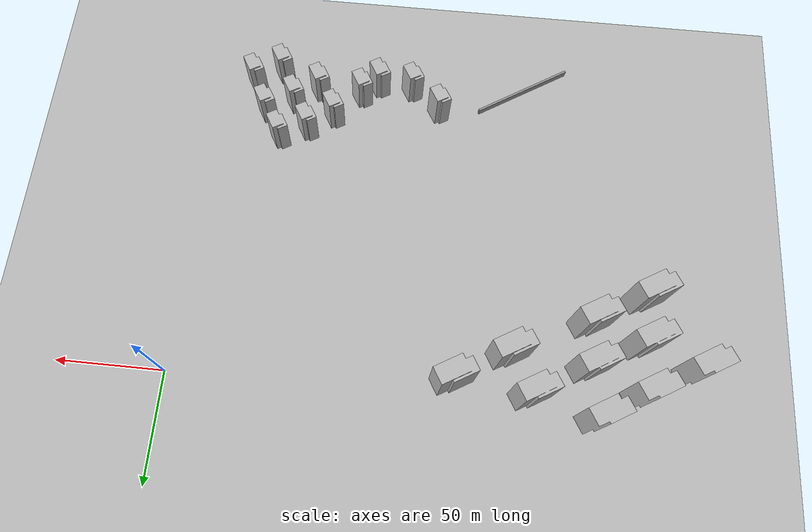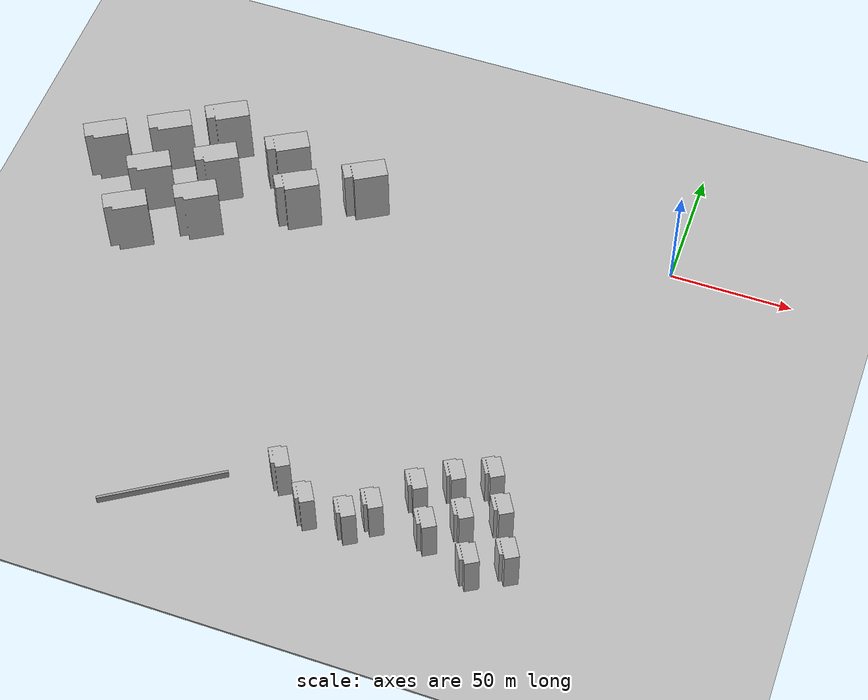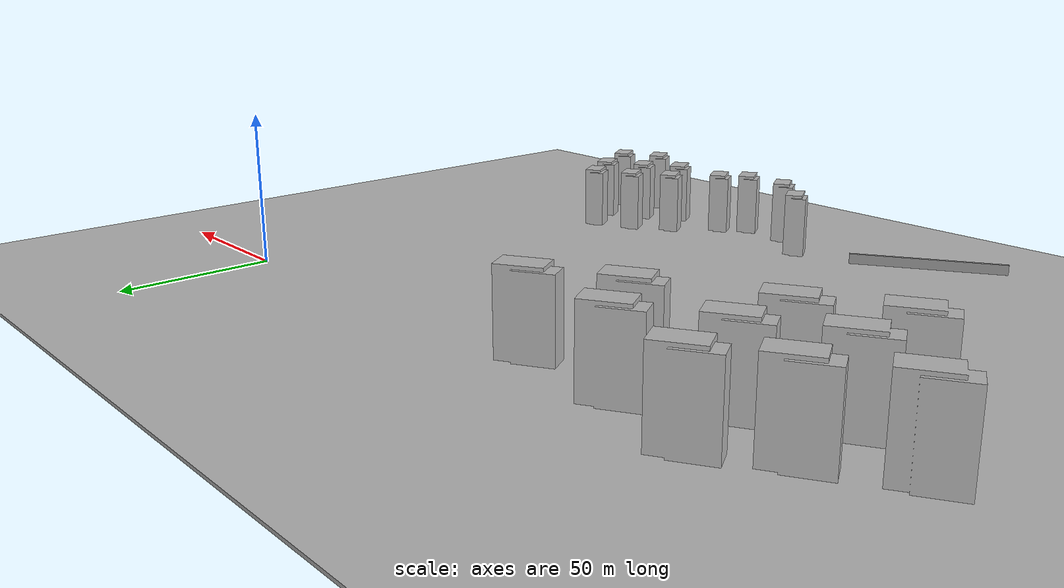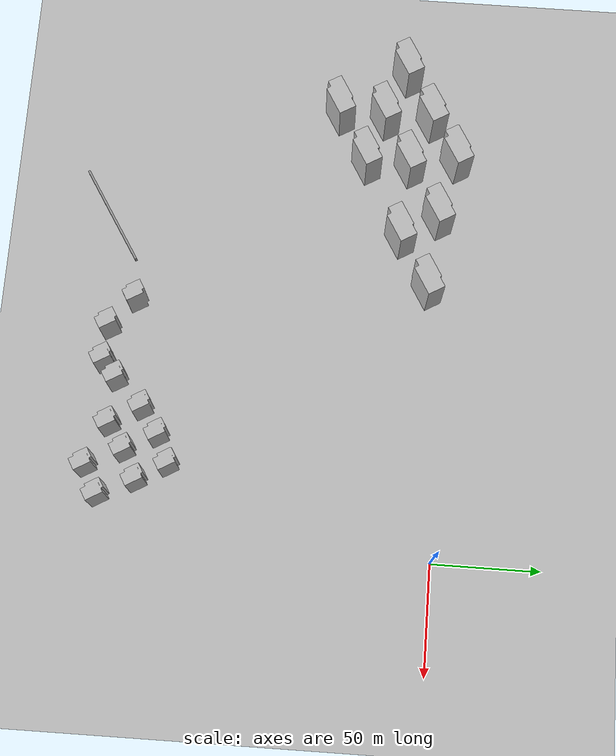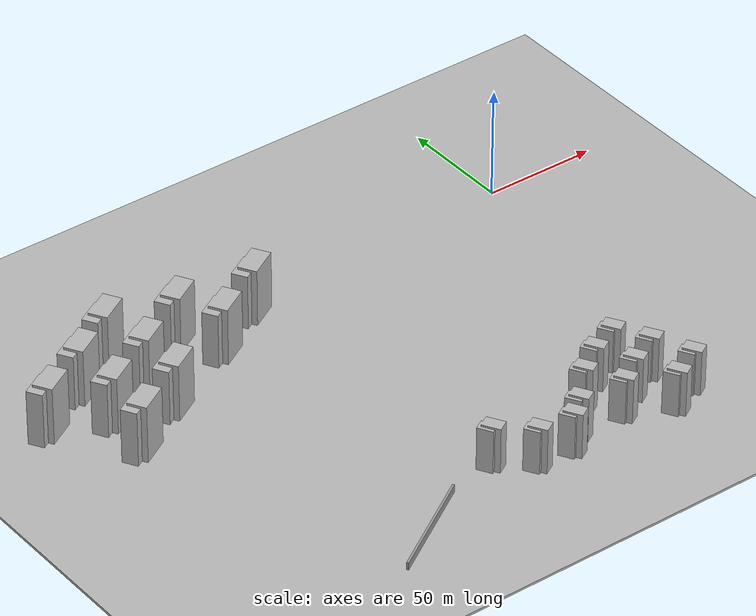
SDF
<sdf version="1.7">
 <world name="default">
  <model name="ground_plane">
   <static>1</static>
   <link name="link">
    <collision name="collision">
     <geometry><mesh><uri>model://ground_plane/scripts/plane.dae</uri><normal>0 0 1</normal></mesh></geometry>
     <surface><friction><ode><mu>100</mu><mu2>50</mu2></ode></friction></surface>
    </collision>
    <visual name="visual">
     <geometry><mesh><uri>model://ground_plane/scripts/plane.dae</uri><normal>0 0 1</normal></mesh></geometry>
     <material>
      <lighting>1</lighting>
      <script><uri>model://ground_plane/scripts/plane.jpg</uri><name>__default__</name></script>
      <shader type="pixel"/>
     </material>
    </visual>
   </link>
  </model>
  <model name="apartment2_1_clone_9">
   <static>1</static>
   <link name="link_0">
    <inertial>
     <mass>1</mass>
     <inertia>
      <ixx>0.166667</ixx>
      <ixy>0</ixy>
      <ixz>0</ixz>
      <iyy>0.166667</iyy>
      <iyz>0</iyz>
      <izz>0.166667</izz>
     </inertia>
    </inertial>
    <pose>1e-06 -0 0 0 -0 0</pose>
    <visual name="visual">
     <geometry>
      <mesh><uri>model://apartment1/scripts/apartment1.dae</uri><scale>0.35 0.14 0.22</scale></mesh>
     </geometry>
     <material>
      <lighting>1</lighting>
      <script><uri>model://apartment1/scripts/apartment1.jpg</uri><name>__default__</name></script>
      <shader type="pixel"/>
     </material>
    </visual>
    <collision name="collision">
     <geometry>
      <mesh><uri>model://apartment1/scripts/apartment1.dae</uri><scale>0.35 0.14 0.22</scale></mesh>
     </geometry>
     <surface>
      <friction>
       <ode><mu>1</mu><mu2>1</mu2><fdir1>0 0 0</fdir1><slip1>0</slip1><slip2>0</slip2></ode>
       <torsional>
        <coefficient>1</coefficient>
        <patch_radius>0</patch_radius>
        <surface_radius>0</surface_radius>
        <use_patch_radius>1</use_patch_radius>
        <ode><slip>0</slip></ode>
       </torsional>
      </friction>
      <bounce><restitution_coefficient>0</restitution_coefficient><threshold>1e+06</threshold></bounce>
      <contact>
       <collide_without_contact>0</collide_without_contact>
       <collide_without_contact_bitmask>1</collide_without_contact_bitmask>
       <collide_bitmask>1</collide_bitmask>
       <ode>
        <soft_cfm>0</soft_cfm>
        <soft_erp>0.2</soft_erp>
        <kp>1e+13</kp>
        <kd>1</kd>
        <max_vel>0.01</max_vel>
        <min_depth>0</min_depth>
       </ode>
       <bullet>
        <split_impulse>1</split_impulse>
        <split_impulse_penetration_threshold>-0.01</split_impulse_penetration_threshold>
        <soft_cfm>0</soft_cfm>
        <soft_erp>0.2</soft_erp>
        <kp>1e+13</kp>
        <kd>1</kd>
       </bullet>
      </contact>
     </surface>
    </collision>
   </link>
   <static>0</static>
   <pose>-211.743 -53.722 0 0 -0 0.527898</pose>
  </model>
  <model name="apartment2_1_clone_10">
   <static>1</static>
   <link name="link_0">
    <inertial>
     <mass>1</mass>
     <inertia>
      <ixx>0.166667</ixx>
      <ixy>0</ixy>
      <ixz>0</ixz>
      <iyy>0.166667</iyy>
      <iyz>0</iyz>
      <izz>0.166667</izz>
     </inertia>
    </inertial>
    <pose>1e-06 -0 0 0 -0 0</pose>
    <visual name="visual">
     <geometry>
      <mesh><uri>model://apartment1/scripts/apartment1.dae</uri><scale>0.35 0.14 0.22</scale></mesh>
     </geometry>
     <material>
      <lighting>1</lighting>
      <script><uri>model://apartment1/scripts/apartment1.jpg</uri><name>__default__</name></script>
      <shader type="pixel"/>
     </material>
    </visual>
    <collision name="collision">
     <geometry>
      <mesh><uri>model://apartment1/scripts/apartment1.dae</uri><scale>0.35 0.14 0.22</scale></mesh>
     </geometry>
     <surface>
      <friction>
       <ode><mu>1</mu><mu2>1</mu2><fdir1>0 0 0</fdir1><slip1>0</slip1><slip2>0</slip2></ode>
       <torsional>
        <coefficient>1</coefficient>
        <patch_radius>0</patch_radius>
        <surface_radius>0</surface_radius>
        <use_patch_radius>1</use_patch_radius>
        <ode><slip>0</slip></ode>
       </torsional>
      </friction>
      <bounce><restitution_coefficient>0</restitution_coefficient><threshold>1e+06</threshold></bounce>
      <contact>
       <collide_without_contact>0</collide_without_contact>
       <collide_without_contact_bitmask>1</collide_without_contact_bitmask>
       <collide_bitmask>1</collide_bitmask>
       <ode>
        <soft_cfm>0</soft_cfm>
        <soft_erp>0.2</soft_erp>
        <kp>1e+13</kp>
        <kd>1</kd>
        <max_vel>0.01</max_vel>
        <min_depth>0</min_depth>
       </ode>
       <bullet>
        <split_impulse>1</split_impulse>
        <split_impulse_penetration_threshold>-0.01</split_impulse_penetration_threshold>
        <soft_cfm>0</soft_cfm>
        <soft_erp>0.2</soft_erp>
        <kp>1e+13</kp>
        <kd>1</kd>
       </bullet>
      </contact>
     </surface>
    </collision>
   </link>
   <static>0</static>
   <pose>-186.969 -39.8378 0 0 -0 0.527898</pose>
  </model>
  <model name="apartment2_1_clone_13">
   <static>1</static>
   <link name="link_0">
    <inertial>
     <mass>1</mass>
     <inertia>
      <ixx>0.166667</ixx>
      <ixy>0</ixy>
      <ixz>0</ixz>
      <iyy>0.166667</iyy>
      <iyz>0</iyz>
      <izz>0.166667</izz>
     </inertia>
    </inertial>
    <pose>1e-06 -0 0 0 -0 0</pose>
    <visual name="visual">
     <geometry>
      <mesh><uri>model://apartment1/scripts/apartment1.dae</uri><scale>0.35 0.14 0.22</scale></mesh>
     </geometry>
     <material>
      <lighting>1</lighting>
      <script><uri>model://apartment1/scripts/apartment1.jpg</uri><name>__default__</name></script>
      <shader type="pixel"/>
     </material>
    </visual>
    <collision name="collision">
     <geometry>
      <mesh><uri>model://apartment1/scripts/apartment1.dae</uri><scale>0.35 0.14 0.22</scale></mesh>
     </geometry>
     <surface>
      <friction>
       <ode><mu>1</mu><mu2>1</mu2><fdir1>0 0 0</fdir1><slip1>0</slip1><slip2>0</slip2></ode>
       <torsional>
        <coefficient>1</coefficient>
        <patch_radius>0</patch_radius>
        <surface_radius>0</surface_radius>
        <use_patch_radius>1</use_patch_radius>
        <ode><slip>0</slip></ode>
       </torsional>
      </friction>
      <bounce><restitution_coefficient>0</restitution_coefficient><threshold>1e+06</threshold></bounce>
      <contact>
       <collide_without_contact>0</collide_without_contact>
       <collide_without_contact_bitmask>1</collide_without_contact_bitmask>
       <collide_bitmask>1</collide_bitmask>
       <ode>
        <soft_cfm>0</soft_cfm>
        <soft_erp>0.2</soft_erp>
        <kp>1e+13</kp>
        <kd>1</kd>
        <max_vel>0.01</max_vel>
        <min_depth>0</min_depth>
       </ode>
       <bullet>
        <split_impulse>1</split_impulse>
        <split_impulse_penetration_threshold>-0.01</split_impulse_penetration_threshold>
        <soft_cfm>0</soft_cfm>
        <soft_erp>0.2</soft_erp>
        <kp>1e+13</kp>
        <kd>1</kd>
       </bullet>
      </contact>
     </surface>
    </collision>
   </link>
   <static>0</static>
   <pose>-210.581 -32.2021 0 0 -0 0.527898</pose>
  </model>
  <model name="apartment2_1_clone_14">
   <static>1</static>
   <link name="link_0">
    <inertial>
     <mass>1</mass>
     <inertia>
      <ixx>0.166667</ixx>
      <ixy>0</ixy>
      <ixz>0</ixz>
      <iyy>0.166667</iyy>
      <iyz>0</iyz>
      <izz>0.166667</izz>
     </inertia>
    </inertial>
    <pose>1e-06 -0 0 0 -0 0</pose>
    <visual name="visual">
     <geometry>
      <mesh><uri>model://apartment1/scripts/apartment1.dae</uri><scale>0.35 0.14 0.22</scale></mesh>
     </geometry>
     <material>
      <lighting>1</lighting>
      <script><uri>model://apartment1/scripts/apartment1.jpg</uri><name>__default__</name></script>
      <shader type="pixel"/>
     </material>
    </visual>
    <collision name="collision">
     <geometry>
      <mesh><uri>model://apartment1/scripts/apartment1.dae</uri><scale>0.35 0.14 0.22</scale></mesh>
     </geometry>
     <surface>
      <friction>
       <ode><mu>1</mu><mu2>1</mu2><fdir1>0 0 0</fdir1><slip1>0</slip1><slip2>0</slip2></ode>
       <torsional>
        <coefficient>1</coefficient>
        <patch_radius>0</patch_radius>
        <surface_radius>0</surface_radius>
        <use_patch_radius>1</use_patch_radius>
        <ode><slip>0</slip></ode>
       </torsional>
      </friction>
      <bounce><restitution_coefficient>0</restitution_coefficient><threshold>1e+06</threshold></bounce>
      <contact>
       <collide_without_contact>0</collide_without_contact>
       <collide_without_contact_bitmask>1</collide_without_contact_bitmask>
       <collide_bitmask>1</collide_bitmask>
       <ode>
        <soft_cfm>0</soft_cfm>
        <soft_erp>0.2</soft_erp>
        <kp>1e+13</kp>
        <kd>1</kd>
        <max_vel>0.01</max_vel>
        <min_depth>0</min_depth>
       </ode>
       <bullet>
        <split_impulse>1</split_impulse>
        <split_impulse_penetration_threshold>-0.01</split_impulse_penetration_threshold>
        <soft_cfm>0</soft_cfm>
        <soft_erp>0.2</soft_erp>
        <kp>1e+13</kp>
        <kd>1</kd>
       </bullet>
      </contact>
     </surface>
    </collision>
   </link>
   <static>0</static>
   <pose>-186.561 -19.3245 0 0 -0 0.527898</pose>
  </model>
  <model name="apartment2_1_clone_16">
   <static>1</static>
   <link name="link_0">
    <inertial>
     <mass>1</mass>
     <inertia>
      <ixx>0.166667</ixx>
      <ixy>0</ixy>
      <ixz>0</ixz>
      <iyy>0.166667</iyy>
      <iyz>0</iyz>
      <izz>0.166667</izz>
     </inertia>
    </inertial>
    <pose>1e-06 -0 0 0 -0 0</pose>
    <visual name="visual">
     <geometry>
      <mesh><uri>model://apartment1/scripts/apartment1.dae</uri><scale>0.35 0.14 0.22</scale></mesh>
     </geometry>
     <material>
      <lighting>1</lighting>
      <script><uri>model://apartment1/scripts/apartment1.jpg</uri><name>__default__</name></script>
      <shader type="pixel"/>
     </material>
    </visual>
    <collision name="collision">
     <geometry>
      <mesh><uri>model://apartment1/scripts/apartment1.dae</uri><scale>0.35 0.14 0.22</scale></mesh>
     </geometry>
     <surface>
      <friction>
       <ode><mu>1</mu><mu2>1</mu2><fdir1>0 0 0</fdir1><slip1>0</slip1><slip2>0</slip2></ode>
       <torsional>
        <coefficient>1</coefficient>
        <patch_radius>0</patch_radius>
        <surface_radius>0</surface_radius>
        <use_patch_radius>1</use_patch_radius>
        <ode><slip>0</slip></ode>
       </torsional>
      </friction>
      <bounce><restitution_coefficient>0</restitution_coefficient><threshold>1e+06</threshold></bounce>
      <contact>
       <collide_without_contact>0</collide_without_contact>
       <collide_without_contact_bitmask>1</collide_without_contact_bitmask>
       <collide_bitmask>1</collide_bitmask>
       <ode>
        <soft_cfm>0</soft_cfm>
        <soft_erp>0.2</soft_erp>
        <kp>1e+13</kp>
        <kd>1</kd>
        <max_vel>0.01</max_vel>
        <min_depth>0</min_depth>
       </ode>
       <bullet>
        <split_impulse>1</split_impulse>
        <split_impulse_penetration_threshold>-0.01</split_impulse_penetration_threshold>
        <soft_cfm>0</soft_cfm>
        <soft_erp>0.2</soft_erp>
        <kp>1e+13</kp>
        <kd>1</kd>
       </bullet>
      </contact>
     </surface>
    </collision>
   </link>
   <static>0</static>
   <pose>-233.929 -22.5574 0 0 -0 0.527898</pose>
  </model>
  <model name="apartment2_1_clone_17">
   <static>1</static>
   <link name="link_0">
    <inertial>
     <mass>1</mass>
     <inertia>
      <ixx>0.166667</ixx>
      <ixy>0</ixy>
      <ixz>0</ixz>
      <iyy>0.166667</iyy>
      <iyz>0</iyz>
      <izz>0.166667</izz>
     </inertia>
    </inertial>
    <pose>1e-06 -0 0 0 -0 0</pose>
    <visual name="visual">
     <geometry>
      <mesh><uri>model://apartment1/scripts/apartment1.dae</uri><scale>0.35 0.14 0.22</scale></mesh>
     </geometry>
     <material>
      <lighting>1</lighting>
      <script><uri>model://apartment1/scripts/apartment1.jpg</uri><name>__default__</name></script>
      <shader type="pixel"/>
     </material>
    </visual>
    <collision name="collision">
     <geometry>
      <mesh><uri>model://apartment1/scripts/apartment1.dae</uri><scale>0.35 0.14 0.22</scale></mesh>
     </geometry>
     <surface>
      <friction>
       <ode><mu>1</mu><mu2>1</mu2><fdir1>0 0 0</fdir1><slip1>0</slip1><slip2>0</slip2></ode>
       <torsional>
        <coefficient>1</coefficient>
        <patch_radius>0</patch_radius>
        <surface_radius>0</surface_radius>
        <use_patch_radius>1</use_patch_radius>
        <ode><slip>0</slip></ode>
       </torsional>
      </friction>
      <bounce><restitution_coefficient>0</restitution_coefficient><threshold>1e+06</threshold></bounce>
      <contact>
       <collide_without_contact>0</collide_without_contact>
       <collide_without_contact_bitmask>1</collide_without_contact_bitmask>
       <collide_bitmask>1</collide_bitmask>
       <ode>
        <soft_cfm>0</soft_cfm>
        <soft_erp>0.2</soft_erp>
        <kp>1e+13</kp>
        <kd>1</kd>
        <max_vel>0.01</max_vel>
        <min_depth>0</min_depth>
       </ode>
       <bullet>
        <split_impulse>1</split_impulse>
        <split_impulse_penetration_threshold>-0.01</split_impulse_penetration_threshold>
        <soft_cfm>0</soft_cfm>
        <soft_erp>0.2</soft_erp>
        <kp>1e+13</kp>
        <kd>1</kd>
       </bullet>
      </contact>
     </surface>
    </collision>
   </link>
   <static>0</static>
   <pose>-210.879 -9.94303 0 0 -0 0.527898</pose>
  </model>
  <model name="apartment2_1_clone_18">
   <static>1</static>
   <link name="link_0">
    <inertial>
     <mass>1</mass>
     <inertia>
      <ixx>0.166667</ixx>
      <ixy>0</ixy>
      <ixz>0</ixz>
      <iyy>0.166667</iyy>
      <iyz>0</iyz>
      <izz>0.166667</izz>
     </inertia>
    </inertial>
    <pose>1e-06 -0 0 0 -0 0</pose>
    <visual name="visual">
     <geometry>
      <mesh><uri>model://apartment1/scripts/apartment1.dae</uri><scale>0.35 0.14 0.22</scale></mesh>
     </geometry>
     <material>
      <lighting>1</lighting>
      <script><uri>model://apartment1/scripts/apartment1.jpg</uri><name>__default__</name></script>
      <shader type="pixel"/>
     </material>
    </visual>
    <collision name="collision">
     <geometry>
      <mesh><uri>model://apartment1/scripts/apartment1.dae</uri><scale>0.35 0.14 0.22</scale></mesh>
     </geometry>
     <surface>
      <friction>
       <ode><mu>1</mu><mu2>1</mu2><fdir1>0 0 0</fdir1><slip1>0</slip1><slip2>0</slip2></ode>
       <torsional>
        <coefficient>1</coefficient>
        <patch_radius>0</patch_radius>
        <surface_radius>0</surface_radius>
        <use_patch_radius>1</use_patch_radius>
        <ode><slip>0</slip></ode>
       </torsional>
      </friction>
      <bounce><restitution_coefficient>0</restitution_coefficient><threshold>1e+06</threshold></bounce>
      <contact>
       <collide_without_contact>0</collide_without_contact>
       <collide_without_contact_bitmask>1</collide_without_contact_bitmask>
       <collide_bitmask>1</collide_bitmask>
       <ode>
        <soft_cfm>0</soft_cfm>
        <soft_erp>0.2</soft_erp>
        <kp>1e+13</kp>
        <kd>1</kd>
        <max_vel>0.01</max_vel>
        <min_depth>0</min_depth>
       </ode>
       <bullet>
        <split_impulse>1</split_impulse>
        <split_impulse_penetration_threshold>-0.01</split_impulse_penetration_threshold>
        <soft_cfm>0</soft_cfm>
        <soft_erp>0.2</soft_erp>
        <kp>1e+13</kp>
        <kd>1</kd>
       </bullet>
      </contact>
     </surface>
    </collision>
   </link>
   <static>0</static>
   <pose>-190.612 2.60224 0 0 -0 0.527898</pose>
  </model>
  <model name="apartment2_1_clone_19">
   <static>1</static>
   <link name="link_0">
    <inertial>
     <mass>1</mass>
     <inertia>
      <ixx>0.166667</ixx>
      <ixy>0</ixy>
      <ixz>0</ixz>
      <iyy>0.166667</iyy>
      <iyz>0</iyz>
      <izz>0.166667</izz>
     </inertia>
    </inertial>
    <pose>1e-06 -0 0 0 -0 0</pose>
    <visual name="visual">
     <geometry>
      <mesh><uri>model://apartment1/scripts/apartment1.dae</uri><scale>0.35 0.14 0.22</scale></mesh>
     </geometry>
     <material>
      <lighting>1</lighting>
      <script><uri>model://apartment1/scripts/apartment1.jpg</uri><name>__default__</name></script>
      <shader type="pixel"/>
     </material>
    </visual>
    <collision name="collision">
     <geometry>
      <mesh><uri>model://apartment1/scripts/apartment1.dae</uri><scale>0.35 0.14 0.22</scale></mesh>
     </geometry>
     <surface>
      <friction>
       <ode><mu>1</mu><mu2>1</mu2><fdir1>0 0 0</fdir1><slip1>0</slip1><slip2>0</slip2></ode>
       <torsional>
        <coefficient>1</coefficient>
        <patch_radius>0</patch_radius>
        <surface_radius>0</surface_radius>
        <use_patch_radius>1</use_patch_radius>
        <ode><slip>0</slip></ode>
       </torsional>
      </friction>
      <bounce><restitution_coefficient>0</restitution_coefficient><threshold>1e+06</threshold></bounce>
      <contact>
       <collide_without_contact>0</collide_without_contact>
       <collide_without_contact_bitmask>1</collide_without_contact_bitmask>
       <collide_bitmask>1</collide_bitmask>
       <ode>
        <soft_cfm>0</soft_cfm>
        <soft_erp>0.2</soft_erp>
        <kp>1e+13</kp>
        <kd>1</kd>
        <max_vel>0.01</max_vel>
        <min_depth>0</min_depth>
       </ode>
       <bullet>
        <split_impulse>1</split_impulse>
        <split_impulse_penetration_threshold>-0.01</split_impulse_penetration_threshold>
        <soft_cfm>0</soft_cfm>
        <soft_erp>0.2</soft_erp>
        <kp>1e+13</kp>
        <kd>1</kd>
       </bullet>
      </contact>
     </surface>
    </collision>
   </link>
   <static>0</static>
   <pose>-126.254 -7.98526 0 0 -0 0.527898</pose>
  </model>
  <model name="apartment2_1_clone_20">
   <static>1</static>
   <link name="link_0">
    <inertial>
     <mass>1</mass>
     <inertia>
      <ixx>0.166667</ixx>
      <ixy>0</ixy>
      <ixz>0</ixz>
      <iyy>0.166667</iyy>
      <iyz>0</iyz>
      <izz>0.166667</izz>
     </inertia>
    </inertial>
    <pose>1e-06 -0 0 0 -0 0</pose>
    <visual name="visual">
     <geometry>
      <mesh><uri>model://apartment1/scripts/apartment1.dae</uri><scale>0.35 0.14 0.22</scale></mesh>
     </geometry>
     <material>
      <lighting>1</lighting>
      <script><uri>model://apartment1/scripts/apartment1.jpg</uri><name>__default__</name></script>
      <shader type="pixel"/>
     </material>
    </visual>
    <collision name="collision">
     <geometry>
      <mesh><uri>model://apartment1/scripts/apartment1.dae</uri><scale>0.35 0.14 0.22</scale></mesh>
     </geometry>
     <surface>
      <friction>
       <ode><mu>1</mu><mu2>1</mu2><fdir1>0 0 0</fdir1><slip1>0</slip1><slip2>0</slip2></ode>
       <torsional>
        <coefficient>1</coefficient>
        <patch_radius>0</patch_radius>
        <surface_radius>0</surface_radius>
        <use_patch_radius>1</use_patch_radius>
        <ode><slip>0</slip></ode>
       </torsional>
      </friction>
      <bounce><restitution_coefficient>0</restitution_coefficient><threshold>1e+06</threshold></bounce>
      <contact>
       <collide_without_contact>0</collide_without_contact>
       <collide_without_contact_bitmask>1</collide_without_contact_bitmask>
       <collide_bitmask>1</collide_bitmask>
       <ode>
        <soft_cfm>0</soft_cfm>
        <soft_erp>0.2</soft_erp>
        <kp>1e+13</kp>
        <kd>1</kd>
        <max_vel>0.01</max_vel>
        <min_depth>0</min_depth>
       </ode>
       <bullet>
        <split_impulse>1</split_impulse>
        <split_impulse_penetration_threshold>-0.01</split_impulse_penetration_threshold>
        <soft_cfm>0</soft_cfm>
        <soft_erp>0.2</soft_erp>
        <kp>1e+13</kp>
        <kd>1</kd>
       </bullet>
      </contact>
     </surface>
    </collision>
   </link>
   <static>0</static>
   <pose>-150.629 -21.8684 0 0 -0 0.527898</pose>
  </model>
  <model name="apartment2_1_clone_22">
   <static>1</static>
   <link name="link_0">
    <inertial>
     <mass>1</mass>
     <inertia>
      <ixx>0.166667</ixx>
      <ixy>0</ixy>
      <ixz>0</ixz>
      <iyy>0.166667</iyy>
      <iyz>0</iyz>
      <izz>0.166667</izz>
     </inertia>
    </inertial>
    <pose>1e-06 -0 0 0 -0 0</pose>
    <visual name="visual">
     <geometry>
      <mesh><uri>model://apartment1/scripts/apartment1.dae</uri><scale>0.35 0.14 0.22</scale></mesh>
     </geometry>
     <material>
      <lighting>1</lighting>
      <script><uri>model://apartment1/scripts/apartment1.jpg</uri><name>__default__</name></script>
      <shader type="pixel"/>
     </material>
    </visual>
    <collision name="collision">
     <geometry>
      <mesh><uri>model://apartment1/scripts/apartment1.dae</uri><scale>0.35 0.14 0.22</scale></mesh>
     </geometry>
     <surface>
      <friction>
       <ode><mu>1</mu><mu2>1</mu2><fdir1>0 0 0</fdir1><slip1>0</slip1><slip2>0</slip2></ode>
       <torsional>
        <coefficient>1</coefficient>
        <patch_radius>0</patch_radius>
        <surface_radius>0</surface_radius>
        <use_patch_radius>1</use_patch_radius>
        <ode><slip>0</slip></ode>
       </torsional>
      </friction>
      <bounce><restitution_coefficient>0</restitution_coefficient><threshold>1e+06</threshold></bounce>
      <contact>
       <collide_without_contact>0</collide_without_contact>
       <collide_without_contact_bitmask>1</collide_without_contact_bitmask>
       <collide_bitmask>1</collide_bitmask>
       <ode>
        <soft_cfm>0</soft_cfm>
        <soft_erp>0.2</soft_erp>
        <kp>1e+13</kp>
        <kd>1</kd>
        <max_vel>0.01</max_vel>
        <min_depth>0</min_depth>
       </ode>
       <bullet>
        <split_impulse>1</split_impulse>
        <split_impulse_penetration_threshold>-0.01</split_impulse_penetration_threshold>
        <soft_cfm>0</soft_cfm>
        <soft_erp>0.2</soft_erp>
        <kp>1e+13</kp>
        <kd>1</kd>
       </bullet>
      </contact>
     </surface>
    </collision>
   </link>
   <static>0</static>
   <pose>-161.201 -4.68446 0 0 -0 0.527898</pose>
  </model>
  <model name="apartment4_clone_17">
   <static>1</static>
   <link name="link_0">
    <inertial>
     <mass>1</mass>
     <inertia>
      <ixx>0.166667</ixx>
      <ixy>0</ixy>
      <ixz>0</ixz>
      <iyy>0.166667</iyy>
      <iyz>0</iyz>
      <izz>0.166667</izz>
     </inertia>
    </inertial>
    <pose>1e-06 -0 0 0 -0 0</pose>
    <visual name="visual">
     <geometry>
      <mesh><uri>model://apartment4/scripts/apartment1.dae</uri><scale>0.14 0.14 0.175</scale></mesh>
     </geometry>
     <material>
      <lighting>1</lighting>
      <script><uri>model://apartment4/scripts/apartment1.jpg</uri><name>__default__</name></script>
      <shader type="pixel"/>
     </material>
    </visual>
    <collision name="collision">
     <geometry>
      <mesh><uri>model://apartment4/scripts/apartment1.dae</uri><scale>0.14 0.14 0.175</scale></mesh>
     </geometry>
     <surface>
      <friction>
       <ode><mu>1</mu><mu2>1</mu2><fdir1>0 0 0</fdir1><slip1>0</slip1><slip2>0</slip2></ode>
       <torsional>
        <coefficient>1</coefficient>
        <patch_radius>0</patch_radius>
        <surface_radius>0</surface_radius>
        <use_patch_radius>1</use_patch_radius>
        <ode><slip>0</slip></ode>
       </torsional>
      </friction>
      <bounce><restitution_coefficient>0</restitution_coefficient><threshold>1e+06</threshold></bounce>
      <contact>
       <collide_without_contact>0</collide_without_contact>
       <collide_without_contact_bitmask>1</collide_without_contact_bitmask>
       <collide_bitmask>1</collide_bitmask>
       <ode>
        <soft_cfm>0</soft_cfm>
        <soft_erp>0.2</soft_erp>
        <kp>1e+13</kp>
        <kd>1</kd>
        <max_vel>0.01</max_vel>
        <min_depth>0</min_depth>
       </ode>
       <bullet>
        <split_impulse>1</split_impulse>
        <split_impulse_penetration_threshold>-0.01</split_impulse_penetration_threshold>
        <soft_cfm>0</soft_cfm>
        <soft_erp>0.2</soft_erp>
        <kp>1e+13</kp>
        <kd>1</kd>
       </bullet>
      </contact>
     </surface>
    </collision>
   </link>
   <static>0</static>
   <pose>-19.5302 -151.042 0 0 -0 0.524325</pose>
  </model>
  <model name="apartment4_clone_18">
   <static>1</static>
   <link name="link_0">
    <inertial>
     <mass>1</mass>
     <inertia>
      <ixx>0.166667</ixx>
      <ixy>0</ixy>
      <ixz>0</ixz>
      <iyy>0.166667</iyy>
      <iyz>0</iyz>
      <izz>0.166667</izz>
     </inertia>
    </inertial>
    <pose>1e-06 -0 0 0 -0 0</pose>
    <visual name="visual">
     <geometry>
      <mesh><uri>model://apartment4/scripts/apartment1.dae</uri><scale>0.14 0.14 0.175</scale></mesh>
     </geometry>
     <material>
      <lighting>1</lighting>
      <script><uri>model://apartment4/scripts/apartment1.jpg</uri><name>__default__</name></script>
      <shader type="pixel"/>
     </material>
    </visual>
    <collision name="collision">
     <geometry>
      <mesh><uri>model://apartment4/scripts/apartment1.dae</uri><scale>0.14 0.14 0.175</scale></mesh>
     </geometry>
     <surface>
      <friction>
       <ode><mu>1</mu><mu2>1</mu2><fdir1>0 0 0</fdir1><slip1>0</slip1><slip2>0</slip2></ode>
       <torsional>
        <coefficient>1</coefficient>
        <patch_radius>0</patch_radius>
        <surface_radius>0</surface_radius>
        <use_patch_radius>1</use_patch_radius>
        <ode><slip>0</slip></ode>
       </torsional>
      </friction>
      <bounce><restitution_coefficient>0</restitution_coefficient><threshold>1e+06</threshold></bounce>
      <contact>
       <collide_without_contact>0</collide_without_contact>
       <collide_without_contact_bitmask>1</collide_without_contact_bitmask>
       <collide_bitmask>1</collide_bitmask>
       <ode>
        <soft_cfm>0</soft_cfm>
        <soft_erp>0.2</soft_erp>
        <kp>1e+13</kp>
        <kd>1</kd>
        <max_vel>0.01</max_vel>
        <min_depth>0</min_depth>
       </ode>
       <bullet>
        <split_impulse>1</split_impulse>
        <split_impulse_penetration_threshold>-0.01</split_impulse_penetration_threshold>
        <soft_cfm>0</soft_cfm>
        <soft_erp>0.2</soft_erp>
        <kp>1e+13</kp>
        <kd>1</kd>
       </bullet>
      </contact>
     </surface>
    </collision>
   </link>
   <static>0</static>
   <pose>-27.1296 -134.321 0 0 -0 0.524325</pose>
  </model>
  <model name="apartment4_clone_19">
   <static>1</static>
   <link name="link_0">
    <inertial>
     <mass>1</mass>
     <inertia>
      <ixx>0.166667</ixx>
      <ixy>0</ixy>
      <ixz>0</ixz>
      <iyy>0.166667</iyy>
      <iyz>0</iyz>
      <izz>0.166667</izz>
     </inertia>
    </inertial>
    <pose>1e-06 -0 0 0 -0 0</pose>
    <visual name="visual">
     <geometry>
      <mesh><uri>model://apartment4/scripts/apartment1.dae</uri><scale>0.14 0.14 0.175</scale></mesh>
     </geometry>
     <material>
      <lighting>1</lighting>
      <script><uri>model://apartment4/scripts/apartment1.jpg</uri><name>__default__</name></script>
      <shader type="pixel"/>
     </material>
    </visual>
    <collision name="collision">
     <geometry>
      <mesh><uri>model://apartment4/scripts/apartment1.dae</uri><scale>0.14 0.14 0.175</scale></mesh>
     </geometry>
     <surface>
      <friction>
       <ode><mu>1</mu><mu2>1</mu2><fdir1>0 0 0</fdir1><slip1>0</slip1><slip2>0</slip2></ode>
       <torsional>
        <coefficient>1</coefficient>
        <patch_radius>0</patch_radius>
        <surface_radius>0</surface_radius>
        <use_patch_radius>1</use_patch_radius>
        <ode><slip>0</slip></ode>
       </torsional>
      </friction>
      <bounce><restitution_coefficient>0</restitution_coefficient><threshold>1e+06</threshold></bounce>
      <contact>
       <collide_without_contact>0</collide_without_contact>
       <collide_without_contact_bitmask>1</collide_without_contact_bitmask>
       <collide_bitmask>1</collide_bitmask>
       <ode>
        <soft_cfm>0</soft_cfm>
        <soft_erp>0.2</soft_erp>
        <kp>1e+13</kp>
        <kd>1</kd>
        <max_vel>0.01</max_vel>
        <min_depth>0</min_depth>
       </ode>
       <bullet>
        <split_impulse>1</split_impulse>
        <split_impulse_penetration_threshold>-0.01</split_impulse_penetration_threshold>
        <soft_cfm>0</soft_cfm>
        <soft_erp>0.2</soft_erp>
        <kp>1e+13</kp>
        <kd>1</kd>
       </bullet>
      </contact>
     </surface>
    </collision>
   </link>
   <static>0</static>
   <pose>-35.1304 -120.534 0 0 -0 0.524325</pose>
  </model>
  <model name="apartment4_clone_20">
   <static>1</static>
   <link name="link_0">
    <inertial>
     <mass>1</mass>
     <inertia>
      <ixx>0.166667</ixx>
      <ixy>0</ixy>
      <ixz>0</ixz>
      <iyy>0.166667</iyy>
      <iyz>0</iyz>
      <izz>0.166667</izz>
     </inertia>
    </inertial>
    <pose>1e-06 -0 0 0 -0 0</pose>
    <visual name="visual">
     <geometry>
      <mesh><uri>model://apartment4/scripts/apartment1.dae</uri><scale>0.14 0.14 0.175</scale></mesh>
     </geometry>
     <material>
      <lighting>1</lighting>
      <script><uri>model://apartment4/scripts/apartment1.jpg</uri><name>__default__</name></script>
      <shader type="pixel"/>
     </material>
    </visual>
    <collision name="collision">
     <geometry>
      <mesh><uri>model://apartment4/scripts/apartment1.dae</uri><scale>0.14 0.14 0.175</scale></mesh>
     </geometry>
     <surface>
      <friction>
       <ode><mu>1</mu><mu2>1</mu2><fdir1>0 0 0</fdir1><slip1>0</slip1><slip2>0</slip2></ode>
       <torsional>
        <coefficient>1</coefficient>
        <patch_radius>0</patch_radius>
        <surface_radius>0</surface_radius>
        <use_patch_radius>1</use_patch_radius>
        <ode><slip>0</slip></ode>
       </torsional>
      </friction>
      <bounce><restitution_coefficient>0</restitution_coefficient><threshold>1e+06</threshold></bounce>
      <contact>
       <collide_without_contact>0</collide_without_contact>
       <collide_without_contact_bitmask>1</collide_without_contact_bitmask>
       <collide_bitmask>1</collide_bitmask>
       <ode>
        <soft_cfm>0</soft_cfm>
        <soft_erp>0.2</soft_erp>
        <kp>1e+13</kp>
        <kd>1</kd>
        <max_vel>0.01</max_vel>
        <min_depth>0</min_depth>
       </ode>
       <bullet>
        <split_impulse>1</split_impulse>
        <split_impulse_penetration_threshold>-0.01</split_impulse_penetration_threshold>
        <soft_cfm>0</soft_cfm>
        <soft_erp>0.2</soft_erp>
        <kp>1e+13</kp>
        <kd>1</kd>
       </bullet>
      </contact>
     </surface>
    </collision>
   </link>
   <static>0</static>
   <pose>-48.2908 -126.251 0 0 -0 0.524325</pose>
  </model>
  <model name="apartment4_clone_21">
   <static>1</static>
   <link name="link_0">
    <inertial>
     <mass>1</mass>
     <inertia>
      <ixx>0.166667</ixx>
      <ixy>0</ixy>
      <ixz>0</ixz>
      <iyy>0.166667</iyy>
      <iyz>0</iyz>
      <izz>0.166667</izz>
     </inertia>
    </inertial>
    <pose>1e-06 -0 0 0 -0 0</pose>
    <visual name="visual">
     <geometry>
      <mesh><uri>model://apartment4/scripts/apartment1.dae</uri><scale>0.14 0.14 0.175</scale></mesh>
     </geometry>
     <material>
      <lighting>1</lighting>
      <script><uri>model://apartment4/scripts/apartment1.jpg</uri><name>__default__</name></script>
      <shader type="pixel"/>
     </material>
    </visual>
    <collision name="collision">
     <geometry>
      <mesh><uri>model://apartment4/scripts/apartment1.dae</uri><scale>0.14 0.14 0.175</scale></mesh>
     </geometry>
     <surface>
      <friction>
       <ode><mu>1</mu><mu2>1</mu2><fdir1>0 0 0</fdir1><slip1>0</slip1><slip2>0</slip2></ode>
       <torsional>
        <coefficient>1</coefficient>
        <patch_radius>0</patch_radius>
        <surface_radius>0</surface_radius>
        <use_patch_radius>1</use_patch_radius>
        <ode><slip>0</slip></ode>
       </torsional>
      </friction>
      <bounce><restitution_coefficient>0</restitution_coefficient><threshold>1e+06</threshold></bounce>
      <contact>
       <collide_without_contact>0</collide_without_contact>
       <collide_without_contact_bitmask>1</collide_without_contact_bitmask>
       <collide_bitmask>1</collide_bitmask>
       <ode>
        <soft_cfm>0</soft_cfm>
        <soft_erp>0.2</soft_erp>
        <kp>1e+13</kp>
        <kd>1</kd>
        <max_vel>0.01</max_vel>
        <min_depth>0</min_depth>
       </ode>
       <bullet>
        <split_impulse>1</split_impulse>
        <split_impulse_penetration_threshold>-0.01</split_impulse_penetration_threshold>
        <soft_cfm>0</soft_cfm>
        <soft_erp>0.2</soft_erp>
        <kp>1e+13</kp>
        <kd>1</kd>
       </bullet>
      </contact>
     </surface>
    </collision>
   </link>
   <static>0</static>
   <pose>-40.4209 -140.871 0 0 -0 0.524325</pose>
  </model>
  <model name="apartment4_clone_22">
   <static>1</static>
   <link name="link_0">
    <inertial>
     <mass>1</mass>
     <inertia>
      <ixx>0.166667</ixx>
      <ixy>0</ixy>
      <ixz>0</ixz>
      <iyy>0.166667</iyy>
      <iyz>0</iyz>
      <izz>0.166667</izz>
     </inertia>
    </inertial>
    <pose>1e-06 -0 0 0 -0 0</pose>
    <visual name="visual">
     <geometry>
      <mesh><uri>model://apartment4/scripts/apartment1.dae</uri><scale>0.14 0.14 0.175</scale></mesh>
     </geometry>
     <material>
      <lighting>1</lighting>
      <script><uri>model://apartment4/scripts/apartment1.jpg</uri><name>__default__</name></script>
      <shader type="pixel"/>
     </material>
    </visual>
    <collision name="collision">
     <geometry>
      <mesh><uri>model://apartment4/scripts/apartment1.dae</uri><scale>0.14 0.14 0.175</scale></mesh>
     </geometry>
     <surface>
      <friction>
       <ode><mu>1</mu><mu2>1</mu2><fdir1>0 0 0</fdir1><slip1>0</slip1><slip2>0</slip2></ode>
       <torsional>
        <coefficient>1</coefficient>
        <patch_radius>0</patch_radius>
        <surface_radius>0</surface_radius>
        <use_patch_radius>1</use_patch_radius>
        <ode><slip>0</slip></ode>
       </torsional>
      </friction>
      <bounce><restitution_coefficient>0</restitution_coefficient><threshold>1e+06</threshold></bounce>
      <contact>
       <collide_without_contact>0</collide_without_contact>
       <collide_without_contact_bitmask>1</collide_without_contact_bitmask>
       <collide_bitmask>1</collide_bitmask>
       <ode>
        <soft_cfm>0</soft_cfm>
        <soft_erp>0.2</soft_erp>
        <kp>1e+13</kp>
        <kd>1</kd>
        <max_vel>0.01</max_vel>
        <min_depth>0</min_depth>
       </ode>
       <bullet>
        <split_impulse>1</split_impulse>
        <split_impulse_penetration_threshold>-0.01</split_impulse_penetration_threshold>
        <soft_cfm>0</soft_cfm>
        <soft_erp>0.2</soft_erp>
        <kp>1e+13</kp>
        <kd>1</kd>
       </bullet>
      </contact>
     </surface>
    </collision>
   </link>
   <static>0</static>
   <pose>-32.551 -157.788 0 0 -0 0.524325</pose>
  </model>
  <model name="apartment4_clone_33">
   <static>1</static>
   <link name="link_0">
    <inertial>
     <mass>1</mass>
     <inertia>
      <ixx>0.166667</ixx>
      <ixy>0</ixy>
      <ixz>0</ixz>
      <iyy>0.166667</iyy>
      <iyz>0</iyz>
      <izz>0.166667</izz>
     </inertia>
    </inertial>
    <pose>1e-06 -0 0 0 -0 0</pose>
    <visual name="visual">
     <geometry>
      <mesh><uri>model://apartment4/scripts/apartment1.dae</uri><scale>0.14 0.14 0.175</scale></mesh>
     </geometry>
     <material>
      <lighting>1</lighting>
      <script><uri>model://apartment4/scripts/apartment1.jpg</uri><name>__default__</name></script>
      <shader type="pixel"/>
     </material>
    </visual>
    <collision name="collision">
     <geometry>
      <mesh><uri>model://apartment4/scripts/apartment1.dae</uri><scale>0.14 0.14 0.175</scale></mesh>
     </geometry>
     <surface>
      <friction>
       <ode><mu>1</mu><mu2>1</mu2><fdir1>0 0 0</fdir1><slip1>0</slip1><slip2>0</slip2></ode>
       <torsional>
        <coefficient>1</coefficient>
        <patch_radius>0</patch_radius>
        <surface_radius>0</surface_radius>
        <use_patch_radius>1</use_patch_radius>
        <ode><slip>0</slip></ode>
       </torsional>
      </friction>
      <bounce><restitution_coefficient>0</restitution_coefficient><threshold>1e+06</threshold></bounce>
      <contact>
       <collide_without_contact>0</collide_without_contact>
       <collide_without_contact_bitmask>1</collide_without_contact_bitmask>
       <collide_bitmask>1</collide_bitmask>
       <ode>
        <soft_cfm>0</soft_cfm>
        <soft_erp>0.2</soft_erp>
        <kp>1e+13</kp>
        <kd>1</kd>
        <max_vel>0.01</max_vel>
        <min_depth>0</min_depth>
       </ode>
       <bullet>
        <split_impulse>1</split_impulse>
        <split_impulse_penetration_threshold>-0.01</split_impulse_penetration_threshold>
        <soft_cfm>0</soft_cfm>
        <soft_erp>0.2</soft_erp>
        <kp>1e+13</kp>
        <kd>1</kd>
       </bullet>
      </contact>
     </surface>
    </collision>
   </link>
   <static>0</static>
   <pose>-60.4583 -134.635 0 0 -0 0.524325</pose>
  </model>
  <model name="apartment4_clone_34">
   <static>1</static>
   <link name="link_0">
    <inertial>
     <mass>1</mass>
     <inertia>
      <ixx>0.166667</ixx>
      <ixy>0</ixy>
      <ixz>0</ixz>
      <iyy>0.166667</iyy>
      <iyz>0</iyz>
      <izz>0.166667</izz>
     </inertia>
    </inertial>
    <pose>1e-06 -0 0 0 -0 0</pose>
    <visual name="visual">
     <geometry>
      <mesh><uri>model://apartment4/scripts/apartment1.dae</uri><scale>0.14 0.14 0.175</scale></mesh>
     </geometry>
     <material>
      <lighting>1</lighting>
      <script><uri>model://apartment4/scripts/apartment1.jpg</uri><name>__default__</name></script>
      <shader type="pixel"/>
     </material>
    </visual>
    <collision name="collision">
     <geometry>
      <mesh><uri>model://apartment4/scripts/apartment1.dae</uri><scale>0.14 0.14 0.175</scale></mesh>
     </geometry>
     <surface>
      <friction>
       <ode><mu>1</mu><mu2>1</mu2><fdir1>0 0 0</fdir1><slip1>0</slip1><slip2>0</slip2></ode>
       <torsional>
        <coefficient>1</coefficient>
        <patch_radius>0</patch_radius>
        <surface_radius>0</surface_radius>
        <use_patch_radius>1</use_patch_radius>
        <ode><slip>0</slip></ode>
       </torsional>
      </friction>
      <bounce><restitution_coefficient>0</restitution_coefficient><threshold>1e+06</threshold></bounce>
      <contact>
       <collide_without_contact>0</collide_without_contact>
       <collide_without_contact_bitmask>1</collide_without_contact_bitmask>
       <collide_bitmask>1</collide_bitmask>
       <ode>
        <soft_cfm>0</soft_cfm>
        <soft_erp>0.2</soft_erp>
        <kp>1e+13</kp>
        <kd>1</kd>
        <max_vel>0.01</max_vel>
        <min_depth>0</min_depth>
       </ode>
       <bullet>
        <split_impulse>1</split_impulse>
        <split_impulse_penetration_threshold>-0.01</split_impulse_penetration_threshold>
        <soft_cfm>0</soft_cfm>
        <soft_erp>0.2</soft_erp>
        <kp>1e+13</kp>
        <kd>1</kd>
       </bullet>
      </contact>
     </surface>
    </collision>
   </link>
   <static>0</static>
   <pose>-51.9752 -148.961 0 0 -0 0.524325</pose>
  </model>
  <model name="apartment4_clone_57">
   <static>1</static>
   <link name="link_0">
    <inertial>
     <mass>1</mass>
     <inertia>
      <ixx>0.166667</ixx>
      <ixy>0</ixy>
      <ixz>0</ixz>
      <iyy>0.166667</iyy>
      <iyz>0</iyz>
      <izz>0.166667</izz>
     </inertia>
    </inertial>
    <pose>1e-06 -0 0 0 -0 0</pose>
    <visual name="visual">
     <geometry>
      <mesh><uri>model://apartment4/scripts/apartment1.dae</uri><scale>0.14 0.14 0.175</scale></mesh>
     </geometry>
     <material>
      <lighting>1</lighting>
      <script><uri>model://apartment4/scripts/apartment1.jpg</uri><name>__default__</name></script>
      <shader type="pixel"/>
     </material>
    </visual>
    <collision name="collision">
     <geometry>
      <mesh><uri>model://apartment4/scripts/apartment1.dae</uri><scale>0.14 0.14 0.175</scale></mesh>
     </geometry>
     <surface>
      <friction>
       <ode><mu>1</mu><mu2>1</mu2><fdir1>0 0 0</fdir1><slip1>0</slip1><slip2>0</slip2></ode>
       <torsional>
        <coefficient>1</coefficient>
        <patch_radius>0</patch_radius>
        <surface_radius>0</surface_radius>
        <use_patch_radius>1</use_patch_radius>
        <ode><slip>0</slip></ode>
       </torsional>
      </friction>
      <bounce><restitution_coefficient>0</restitution_coefficient><threshold>1e+06</threshold></bounce>
      <contact>
       <collide_without_contact>0</collide_without_contact>
       <collide_without_contact_bitmask>1</collide_without_contact_bitmask>
       <collide_bitmask>1</collide_bitmask>
       <ode>
        <soft_cfm>0</soft_cfm>
        <soft_erp>0.2</soft_erp>
        <kp>1e+13</kp>
        <kd>1</kd>
        <max_vel>0.01</max_vel>
        <min_depth>0</min_depth>
       </ode>
       <bullet>
        <split_impulse>1</split_impulse>
        <split_impulse_penetration_threshold>-0.01</split_impulse_penetration_threshold>
        <soft_cfm>0</soft_cfm>
        <soft_erp>0.2</soft_erp>
        <kp>1e+13</kp>
        <kd>1</kd>
       </bullet>
      </contact>
     </surface>
    </collision>
   </link>
   <static>0</static>
   <pose>-73.2144 -147.722 0 0 -0 0.524325</pose>
  </model>
  <model name="apartment4_clone_68">
   <static>1</static>
   <link name="link_0">
    <inertial>
     <mass>1</mass>
     <inertia>
      <ixx>0.166667</ixx>
      <ixy>0</ixy>
      <ixz>0</ixz>
      <iyy>0.166667</iyy>
      <iyz>0</iyz>
      <izz>0.166667</izz>
     </inertia>
    </inertial>
    <pose>1e-06 -0 0 0 -0 0</pose>
    <visual name="visual">
     <geometry>
      <mesh><uri>model://apartment4/scripts/apartment1.dae</uri><scale>0.14 0.14 0.175</scale></mesh>
     </geometry>
     <material>
      <lighting>1</lighting>
      <script><uri>model://apartment4/scripts/apartment1.jpg</uri><name>__default__</name></script>
      <shader type="pixel"/>
     </material>
    </visual>
    <collision name="collision">
     <geometry>
      <mesh><uri>model://apartment4/scripts/apartment1.dae</uri><scale>0.14 0.14 0.175</scale></mesh>
     </geometry>
     <surface>
      <friction>
       <ode><mu>1</mu><mu2>1</mu2><fdir1>0 0 0</fdir1><slip1>0</slip1><slip2>0</slip2></ode>
       <torsional>
        <coefficient>1</coefficient>
        <patch_radius>0</patch_radius>
        <surface_radius>0</surface_radius>
        <use_patch_radius>1</use_patch_radius>
        <ode><slip>0</slip></ode>
       </torsional>
      </friction>
      <bounce><restitution_coefficient>0</restitution_coefficient><threshold>1e+06</threshold></bounce>
      <contact>
       <collide_without_contact>0</collide_without_contact>
       <collide_without_contact_bitmask>1</collide_without_contact_bitmask>
       <collide_bitmask>1</collide_bitmask>
       <ode>
        <soft_cfm>0</soft_cfm>
        <soft_erp>0.2</soft_erp>
        <kp>1e+13</kp>
        <kd>1</kd>
        <max_vel>0.01</max_vel>
        <min_depth>0</min_depth>
       </ode>
       <bullet>
        <split_impulse>1</split_impulse>
        <split_impulse_penetration_threshold>-0.01</split_impulse_penetration_threshold>
        <soft_cfm>0</soft_cfm>
        <soft_erp>0.2</soft_erp>
        <kp>1e+13</kp>
        <kd>1</kd>
       </bullet>
      </contact>
     </surface>
    </collision>
   </link>
   <static>0</static>
   <pose>-111.796 -142.383 0 0 -0 0.524325</pose>
  </model>
  <model name="apartment4_clone_80">
   <static>1</static>
   <link name="link_0">
    <inertial>
     <mass>1</mass>
     <inertia>
      <ixx>0.166667</ixx>
      <ixy>0</ixy>
      <ixz>0</ixz>
      <iyy>0.166667</iyy>
      <iyz>0</iyz>
      <izz>0.166667</izz>
     </inertia>
    </inertial>
    <pose>1e-06 -0 0 0 -0 0</pose>
    <visual name="visual">
     <geometry>
      <mesh><uri>model://apartment4/scripts/apartment1.dae</uri><scale>0.14 0.14 0.175</scale></mesh>
     </geometry>
     <material>
      <lighting>1</lighting>
      <script><uri>model://apartment4/scripts/apartment1.jpg</uri><name>__default__</name></script>
      <shader type="pixel"/>
     </material>
    </visual>
    <collision name="collision">
     <geometry>
      <mesh><uri>model://apartment4/scripts/apartment1.dae</uri><scale>0.14 0.14 0.175</scale></mesh>
     </geometry>
     <surface>
      <friction>
       <ode><mu>1</mu><mu2>1</mu2><fdir1>0 0 0</fdir1><slip1>0</slip1><slip2>0</slip2></ode>
       <torsional>
        <coefficient>1</coefficient>
        <patch_radius>0</patch_radius>
        <surface_radius>0</surface_radius>
        <use_patch_radius>1</use_patch_radius>
        <ode><slip>0</slip></ode>
       </torsional>
      </friction>
      <bounce><restitution_coefficient>0</restitution_coefficient><threshold>1e+06</threshold></bounce>
      <contact>
       <collide_without_contact>0</collide_without_contact>
       <collide_without_contact_bitmask>1</collide_without_contact_bitmask>
       <collide_bitmask>1</collide_bitmask>
       <ode>
        <soft_cfm>0</soft_cfm>
        <soft_erp>0.2</soft_erp>
        <kp>1e+13</kp>
        <kd>1</kd>
        <max_vel>0.01</max_vel>
        <min_depth>0</min_depth>
       </ode>
       <bullet>
        <split_impulse>1</split_impulse>
        <split_impulse_penetration_threshold>-0.01</split_impulse_penetration_threshold>
        <soft_cfm>0</soft_cfm>
        <soft_erp>0.2</soft_erp>
        <kp>1e+13</kp>
        <kd>1</kd>
       </bullet>
      </contact>
     </surface>
    </collision>
   </link>
   <static>0</static>
   <pose>-97.8854 -153.543 0 0 -0 0.524325</pose>
  </model>
  <model name="apartment4_clone_81">
   <static>1</static>
   <link name="link_0">
    <inertial>
     <mass>1</mass>
     <inertia>
      <ixx>0.166667</ixx>
      <ixy>0</ixy>
      <ixz>0</ixz>
      <iyy>0.166667</iyy>
      <iyz>0</iyz>
      <izz>0.166667</izz>
     </inertia>
    </inertial>
    <pose>1e-06 -0 0 0 -0 0</pose>
    <visual name="visual">
     <geometry>
      <mesh><uri>model://apartment4/scripts/apartment1.dae</uri><scale>0.14 0.14 0.175</scale></mesh>
     </geometry>
     <material>
      <lighting>1</lighting>
      <script><uri>model://apartment4/scripts/apartment1.jpg</uri><name>__default__</name></script>
      <shader type="pixel"/>
     </material>
    </visual>
    <collision name="collision">
     <geometry>
      <mesh><uri>model://apartment4/scripts/apartment1.dae</uri><scale>0.14 0.14 0.175</scale></mesh>
     </geometry>
     <surface>
      <friction>
       <ode><mu>1</mu><mu2>1</mu2><fdir1>0 0 0</fdir1><slip1>0</slip1><slip2>0</slip2></ode>
       <torsional>
        <coefficient>1</coefficient>
        <patch_radius>0</patch_radius>
        <surface_radius>0</surface_radius>
        <use_patch_radius>1</use_patch_radius>
        <ode><slip>0</slip></ode>
       </torsional>
      </friction>
      <bounce><restitution_coefficient>0</restitution_coefficient><threshold>1e+06</threshold></bounce>
      <contact>
       <collide_without_contact>0</collide_without_contact>
       <collide_without_contact_bitmask>1</collide_without_contact_bitmask>
       <collide_bitmask>1</collide_bitmask>
       <ode>
        <soft_cfm>0</soft_cfm>
        <soft_erp>0.2</soft_erp>
        <kp>1e+13</kp>
        <kd>1</kd>
        <max_vel>0.01</max_vel>
        <min_depth>0</min_depth>
       </ode>
       <bullet>
        <split_impulse>1</split_impulse>
        <split_impulse_penetration_threshold>-0.01</split_impulse_penetration_threshold>
        <soft_cfm>0</soft_cfm>
        <soft_erp>0.2</soft_erp>
        <kp>1e+13</kp>
        <kd>1</kd>
       </bullet>
      </contact>
     </surface>
    </collision>
   </link>
   <static>0</static>
   <pose>-81.3749 -154.308 0 0 -0 0.524325</pose>
  </model>
  <model name="grey_wall_clone_clone_clone">
   <static>1</static>
   <link name="link">
    <pose>0 0 1.4 0 -0 0</pose>
    <collision name="collision"><geometry><box><size>50.5 1 4</size></box></geometry></collision>
    <visual name="visual">
     <cast_shadows>0</cast_shadows>
     <geometry><box><size>50.5 1 4</size></box></geometry>
     <material>
      <script>
       <uri>model://grey_wall/materials/scripts</uri>
       <uri>model://grey_wall/materials/textures</uri>
       <name>vrc/grey_wall</name>
      </script>
     </material>
    </visual>
   </link>
   <pose>-154.497 -158.806 0 0 0 -2.5797</pose>
  </model>
 </world>
</sdf>
